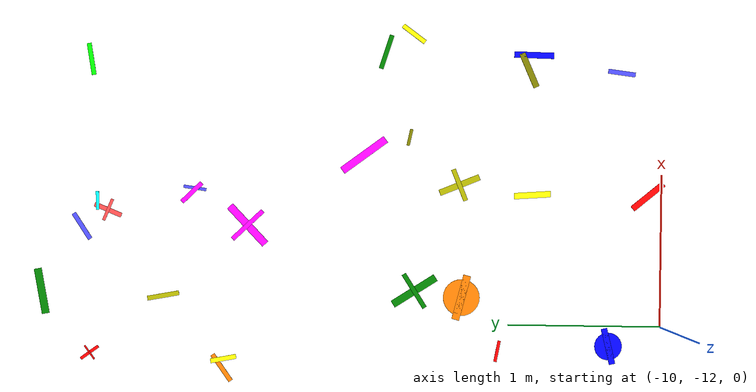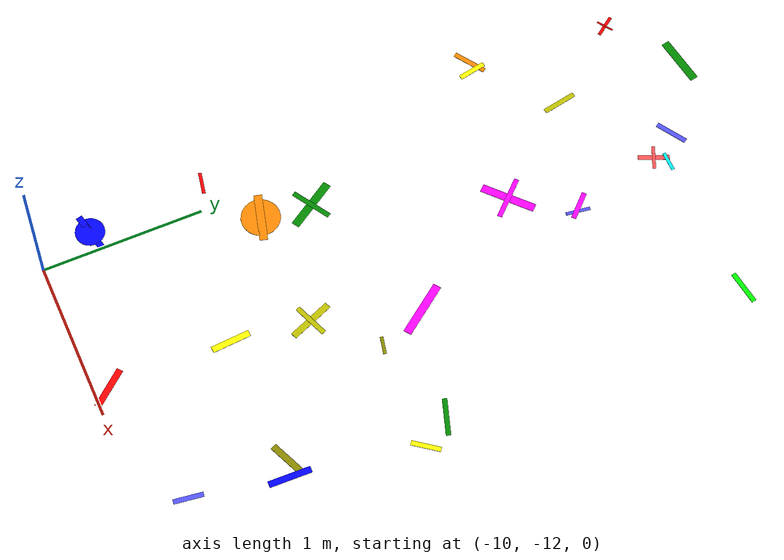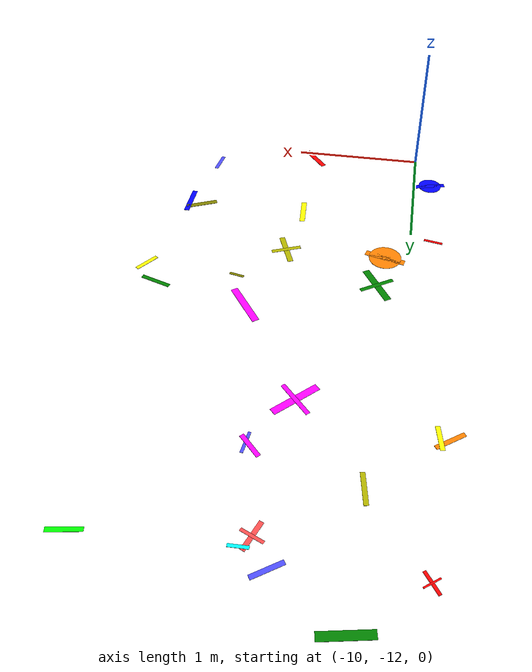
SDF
<sdf version="1.6">
 <world name="default">
  <model name="letter_O_407">
   <static>true</static>
   <pose>-10.13 -11.66 0.004 0 0 3.379</pose>
   <link name="link">
    <visual name="visual">
     <geometry><box><size>0.24 0.04 0.002</size></box></geometry>
     <material>
      <ambient>0.0 0.0 1.0 1</ambient>
      <diffuse>0.0 0.0 1.0 1</diffuse>
      <specular>0.1 0.1 0.1 1</specular>
     </material>
    </visual>
    <visual name="visual2">
     <geometry><cylinder><radius>0.09</radius><length>0.002</length></cylinder></geometry>
     <material><ambient>0.0 0.0 1.0 1</ambient><diffuse>0.0 0.0 1.0 1</diffuse></material>
    </visual>
   </link>
  </model>
  <model name="letter_P_408">
   <static>true</static>
   <pose>-10.17 -10.93 0.009 0 0 2.951</pose>
   <link name="link">
    <visual name="visual">
     <geometry><box><size>0.14 0.02 0.002</size></box></geometry>
     <material>
      <ambient>1.0 0.0 0.0 1</ambient>
      <diffuse>1.0 0.0 0.0 1</diffuse>
      <specular>0.1 0.1 0.1 1</specular>
     </material>
    </visual>
   </link>
  </model>
  <model name="letter_G_409">
   <static>true</static>
   <pose>-9.82 -10.69 0.008 0 0 6.027</pose>
   <link name="link">
    <visual name="visual">
     <geometry><box><size>0.30 0.05 0.002</size></box></geometry>
     <material>
      <ambient>1.0 0.5 0.0 1</ambient>
      <diffuse>1.0 0.5 0.0 1</diffuse>
      <specular>0.1 0.1 0.1 1</specular>
     </material>
    </visual>
    <visual name="visual2">
     <geometry><cylinder><radius>0.12</radius><length>0.002</length></cylinder></geometry>
     <material><ambient>1.0 0.5 0.0 1</ambient><diffuse>1.0 0.5 0.0 1</diffuse></material>
    </visual>
   </link>
  </model>
  <model name="letter_A_410">
   <static>true</static>
   <pose>-9.78 -10.38 0.011 0 0 2.140</pose>
   <link name="link">
    <visual name="visual">
     <geometry><box><size>0.33 0.05 0.002</size></box></geometry>
     <material>
      <ambient>0.0 0.5 0.0 1</ambient>
      <diffuse>0.0 0.5 0.0 1</diffuse>
      <specular>0.1 0.1 0.1 1</specular>
     </material>
    </visual>
    <visual name="visual2">
     <pose>0 0 0.001 0 0 1.57</pose>
     <geometry><box><size>0.26 0.03 0.001</size></box></geometry>
     <material><ambient>0.0 0.5 0.0 1</ambient><diffuse>0.0 0.5 0.0 1</diffuse></material>
    </visual>
   </link>
  </model>
  <model name="letter_B_412">
   <static>true</static>
   <pose>-10.30 -9.12 0.011 0 0 0.617</pose>
   <link name="link">
    <visual name="visual">
     <geometry><box><size>0.21 0.03 0.002</size></box></geometry>
     <material>
      <ambient>1.0 0.5 0.0 1</ambient>
      <diffuse>1.0 0.5 0.0 1</diffuse>
      <specular>0.1 0.1 0.1 1</specular>
     </material>
    </visual>
   </link>
  </model>
  <model name="letter_Y_413">
   <static>true</static>
   <pose>-10.24 -9.13 0.012 0 0 1.759</pose>
   <link name="link">
    <visual name="visual">
     <geometry><box><size>0.17 0.03 0.002</size></box></geometry>
     <material>
      <ambient>1.0 1.0 0.0 1</ambient>
      <diffuse>1.0 1.0 0.0 1</diffuse>
      <specular>0.1 0.1 0.1 1</specular>
     </material>
    </visual>
   </link>
  </model>
  <model name="letter_Z_414">
   <static>true</static>
   <pose>-9.83 -8.73 0.009 0 0 1.753</pose>
   <link name="link">
    <visual name="visual">
     <geometry><box><size>0.21 0.03 0.002</size></box></geometry>
     <material>
      <ambient>0.7 0.7 0.0 1</ambient>
      <diffuse>0.7 0.7 0.0 1</diffuse>
      <specular>0.1 0.1 0.1 1</specular>
     </material>
    </visual>
   </link>
  </model>
  <model name="letter_T_415">
   <static>true</static>
   <pose>-10.21 -8.25 0.008 0 0 2.203</pose>
   <link name="link">
    <visual name="visual">
     <geometry><box><size>0.14 0.02 0.002</size></box></geometry>
     <material>
      <ambient>1.0 0.0 0.0 1</ambient>
      <diffuse>1.0 0.0 0.0 1</diffuse>
      <specular>0.1 0.1 0.1 1</specular>
     </material>
    </visual>
    <visual name="visual2">
     <pose>0 0 0.001 0 0 1.57</pose>
     <geometry><box><size>0.11 0.01 0.001</size></box></geometry>
     <material><ambient>1.0 0.0 0.0 1</ambient><diffuse>1.0 0.0 0.0 1</diffuse></material>
    </visual>
   </link>
  </model>
  <model name="letter_X_417">
   <static>true</static>
   <pose>-9.81 -7.93 0.004 0 0 3.332</pose>
   <link name="link">
    <visual name="visual">
     <geometry><box><size>0.30 0.05 0.002</size></box></geometry>
     <material>
      <ambient>0.0 0.5 0.0 1</ambient>
      <diffuse>0.0 0.5 0.0 1</diffuse>
      <specular>0.1 0.1 0.1 1</specular>
     </material>
    </visual>
   </link>
  </model>
  <model name="letter_V_483">
   <static>true</static>
   <pose>-9.14 -11.91 0.011 0 0 5.403</pose>
   <link name="link">
    <visual name="visual">
     <geometry><box><size>0.26 0.04 0.002</size></box></geometry>
     <material>
      <ambient>1.0 0.0 0.0 1</ambient>
      <diffuse>1.0 0.0 0.0 1</diffuse>
      <specular>0.1 0.1 0.1 1</specular>
     </material>
    </visual>
   </link>
  </model>
  <model name="letter_R_484">
   <static>true</static>
   <pose>-9.14 -11.15 0.006 0 0 1.639</pose>
   <link name="link">
    <visual name="visual">
     <geometry><box><size>0.24 0.04 0.002</size></box></geometry>
     <material>
      <ambient>1.0 1.0 0.0 1</ambient>
      <diffuse>1.0 1.0 0.0 1</diffuse>
      <specular>0.1 0.1 0.1 1</specular>
     </material>
    </visual>
   </link>
  </model>
  <model name="letter_E_485">
   <static>true</static>
   <pose>-9.08 -10.67 0.009 0 0 1.958</pose>
   <link name="link">
    <visual name="visual">
     <geometry><box><size>0.28 0.04 0.002</size></box></geometry>
     <material>
      <ambient>0.7 0.7 0.0 1</ambient>
      <diffuse>0.7 0.7 0.0 1</diffuse>
      <specular>0.1 0.1 0.1 1</specular>
     </material>
    </visual>
    <visual name="visual2">
     <pose>0 0 0.001 0 0 1.57</pose>
     <geometry><box><size>0.22 0.03 0.001</size></box></geometry>
     <material><ambient>0.7 0.7 0.0 1</ambient><diffuse>0.7 0.7 0.0 1</diffuse></material>
    </visual>
   </link>
  </model>
  <model name="letter_M_486">
   <static>true</static>
   <pose>-8.89 -10.04 0.012 0 0 5.351</pose>
   <link name="link">
    <visual name="visual">
     <geometry><box><size>0.35 0.05 0.002</size></box></geometry>
     <material>
      <ambient>1.0 0.0 1.0 1</ambient>
      <diffuse>1.0 0.0 1.0 1</diffuse>
      <specular>0.1 0.1 0.1 1</specular>
     </material>
    </visual>
   </link>
  </model>
  <model name="letter_D_487">
   <static>true</static>
   <pose>-8.77 -10.34 0.004 0 0 6.072</pose>
   <link name="link">
    <visual name="visual">
     <geometry><box><size>0.11 0.02 0.002</size></box></geometry>
     <material>
      <ambient>0.5 0.5 0.0 1</ambient>
      <diffuse>0.5 0.5 0.0 1</diffuse>
      <specular>0.1 0.1 0.1 1</specular>
     </material>
    </visual>
   </link>
  </model>
  <model name="letter_Z_488">
   <static>true</static>
   <pose>-9.12 -8.93 0.004 0 0 4.571</pose>
   <link name="link">
    <visual name="visual">
     <geometry><box><size>0.15 0.02 0.002</size></box></geometry>
     <material>
      <ambient>0.3 0.3 1.0 1</ambient>
      <diffuse>0.3 0.3 1.0 1</diffuse>
      <specular>0.1 0.1 0.1 1</specular>
     </material>
    </visual>
   </link>
  </model>
  <model name="letter_T_489">
   <static>true</static>
   <pose>-9.36 -9.28 0.012 0 0 0.762</pose>
   <link name="link">
    <visual name="visual">
     <geometry><box><size>0.34 0.05 0.002</size></box></geometry>
     <material>
      <ambient>1.0 0.0 1.0 1</ambient>
      <diffuse>1.0 0.0 1.0 1</diffuse>
      <specular>0.1 0.1 0.1 1</specular>
     </material>
    </visual>
    <visual name="visual2">
     <pose>0 0 0.001 0 0 1.57</pose>
     <geometry><box><size>0.27 0.03 0.001</size></box></geometry>
     <material><ambient>1.0 0.0 1.0 1</ambient><diffuse>1.0 0.0 1.0 1</diffuse></material>
    </visual>
   </link>
  </model>
  <model name="letter_W_490">
   <static>true</static>
   <pose>-9.15 -8.91 0.007 0 0 2.348</pose>
   <link name="link">
    <visual name="visual">
     <geometry><box><size>0.18 0.03 0.002</size></box></geometry>
     <material>
      <ambient>1.0 0.0 1.0 1</ambient>
      <diffuse>1.0 0.0 1.0 1</diffuse>
      <specular>0.1 0.1 0.1 1</specular>
     </material>
    </visual>
   </link>
  </model>
  <model name="letter_K_491">
   <static>true</static>
   <pose>-9.38 -8.19 0.005 0 0 3.725</pose>
   <link name="link">
    <visual name="visual">
     <geometry><box><size>0.20 0.03 0.002</size></box></geometry>
     <material>
      <ambient>0.3 0.3 1.0 1</ambient>
      <diffuse>0.3 0.3 1.0 1</diffuse>
      <specular>0.1 0.1 0.1 1</specular>
     </material>
    </visual>
   </link>
  </model>
  <model name="letter_A_492">
   <static>true</static>
   <pose>-9.27 -8.36 0.004 0 0 4.324</pose>
   <link name="link">
    <visual name="visual">
     <geometry><box><size>0.19 0.03 0.002</size></box></geometry>
     <material>
      <ambient>1.0 0.3 0.3 1</ambient>
      <diffuse>1.0 0.3 0.3 1</diffuse>
      <specular>0.1 0.1 0.1 1</specular>
     </material>
    </visual>
    <visual name="visual2">
     <pose>0 0 0.001 0 0 1.57</pose>
     <geometry><box><size>0.15 0.02 0.001</size></box></geometry>
     <material><ambient>1.0 0.3 0.3 1</ambient><diffuse>1.0 0.3 0.3 1</diffuse></material>
    </visual>
   </link>
  </model>
  <model name="letter_Y_493">
   <static>true</static>
   <pose>-9.21 -8.29 0.007 0 0 3.171</pose>
   <link name="link">
    <visual name="visual">
     <geometry><box><size>0.12 0.02 0.002</size></box></geometry>
     <material>
      <ambient>0.0 1.0 1.0 1</ambient>
      <diffuse>0.0 1.0 1.0 1</diffuse>
      <specular>0.1 0.1 0.1 1</specular>
     </material>
    </visual>
   </link>
  </model>
  <model name="letter_W_566">
   <static>true</static>
   <pose>-8.33 -11.73 0.004 0 0 1.441</pose>
   <link name="link">
    <visual name="visual">
     <geometry><box><size>0.18 0.03 0.002</size></box></geometry>
     <material>
      <ambient>0.3 0.3 1.0 1</ambient>
      <diffuse>0.3 0.3 1.0 1</diffuse>
      <specular>0.1 0.1 0.1 1</specular>
     </material>
    </visual>
   </link>
  </model>
  <model name="letter_D_568">
   <static>true</static>
   <pose>-8.32 -11.12 0.011 0 0 0.411</pose>
   <link name="link">
    <visual name="visual">
     <geometry><box><size>0.24 0.04 0.002</size></box></geometry>
     <material>
      <ambient>0.5 0.5 0.0 1</ambient>
      <diffuse>0.5 0.5 0.0 1</diffuse>
      <specular>0.1 0.1 0.1 1</specular>
     </material>
    </visual>
   </link>
  </model>
  <model name="letter_D_569">
   <static>true</static>
   <pose>-8.22 -11.15 0.011 0 0 1.547</pose>
   <link name="link">
    <visual name="visual">
     <geometry><box><size>0.26 0.04 0.002</size></box></geometry>
     <material>
      <ambient>0.0 0.0 1.0 1</ambient>
      <diffuse>0.0 0.0 1.0 1</diffuse>
      <specular>0.1 0.1 0.1 1</specular>
     </material>
    </visual>
   </link>
  </model>
  <model name="letter_X_571">
   <static>true</static>
   <pose>-8.09 -10.36 0.011 0 0 4.076</pose>
   <link name="link">
    <visual name="visual">
     <geometry><box><size>0.18 0.03 0.002</size></box></geometry>
     <material>
      <ambient>1.0 1.0 0.0 1</ambient>
      <diffuse>1.0 1.0 0.0 1</diffuse>
      <specular>0.1 0.1 0.1 1</specular>
     </material>
    </visual>
   </link>
  </model>
  <model name="letter_Z_573">
   <static>true</static>
   <pose>-8.21 -10.18 0.009 0 0 2.834</pose>
   <link name="link">
    <visual name="visual">
     <geometry><box><size>0.23 0.03 0.002</size></box></geometry>
     <material>
      <ambient>0.0 0.5 0.0 1</ambient>
      <diffuse>0.0 0.5 0.0 1</diffuse>
      <specular>0.1 0.1 0.1 1</specular>
     </material>
    </visual>
   </link>
  </model>
  <model name="letter_U_576">
   <static>true</static>
   <pose>-8.28 -8.24 0.006 0 0 0.170</pose>
   <link name="link">
    <visual name="visual">
     <geometry><box><size>0.21 0.03 0.002</size></box></geometry>
     <material>
      <ambient>0.0 1.0 0.0 1</ambient>
      <diffuse>0.0 1.0 0.0 1</diffuse>
      <specular>0.1 0.1 0.1 1</specular>
     </material>
    </visual>
   </link>
  </model>
 </world>
</sdf>
